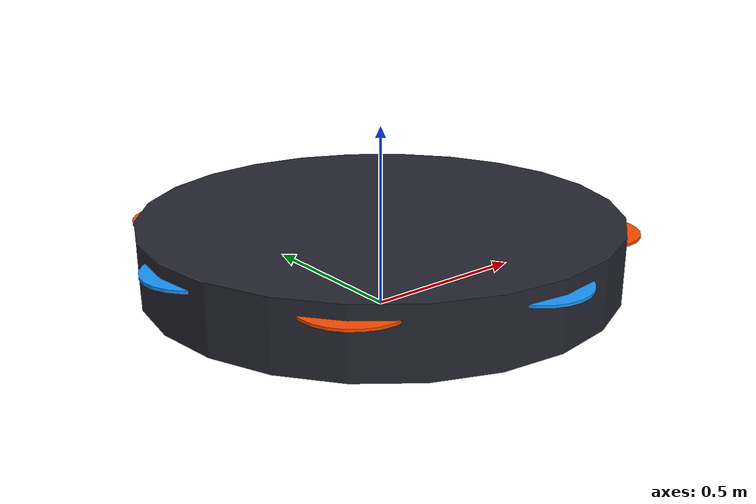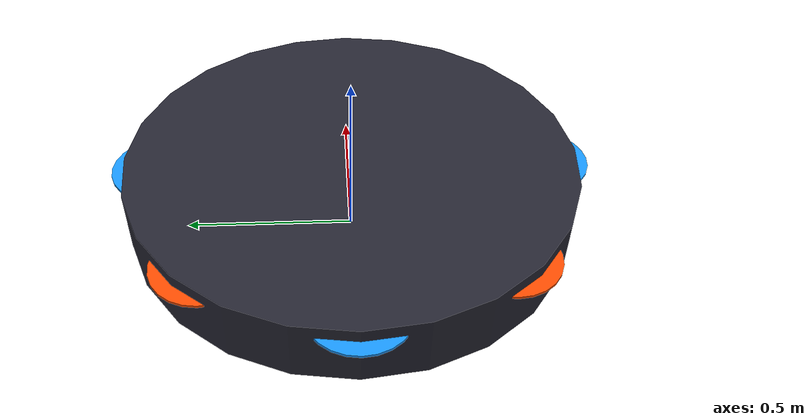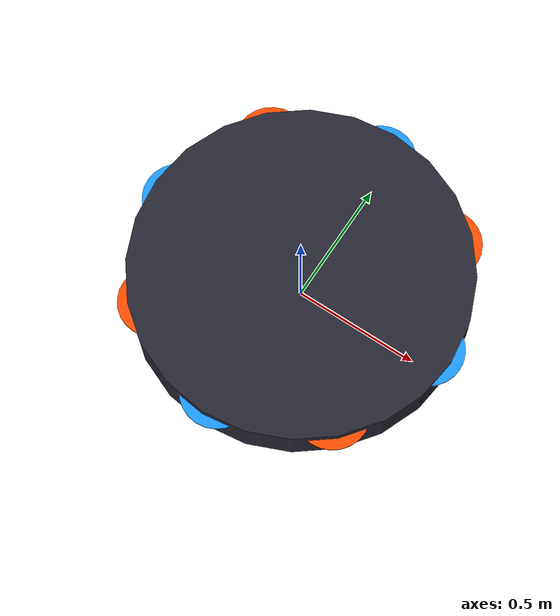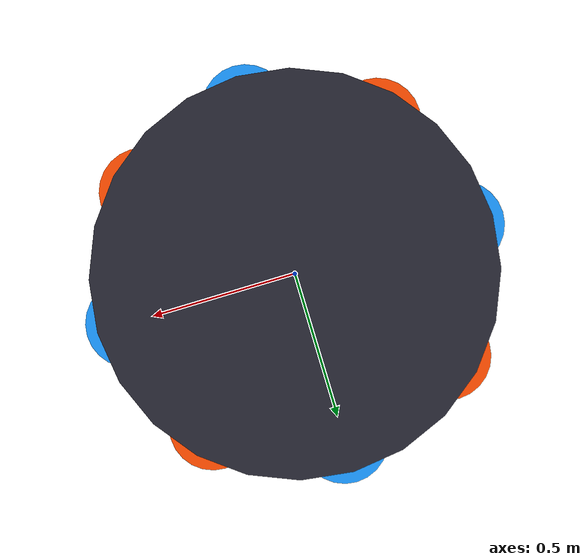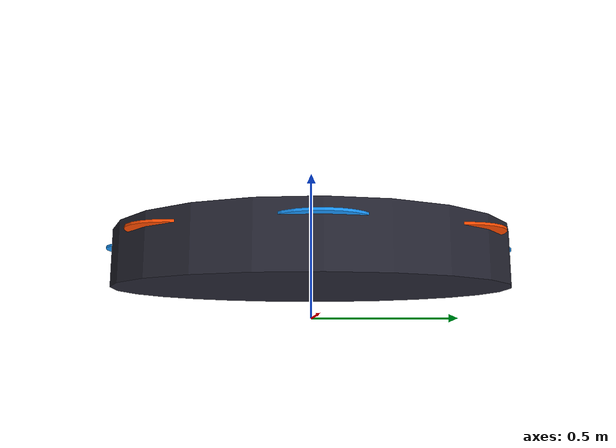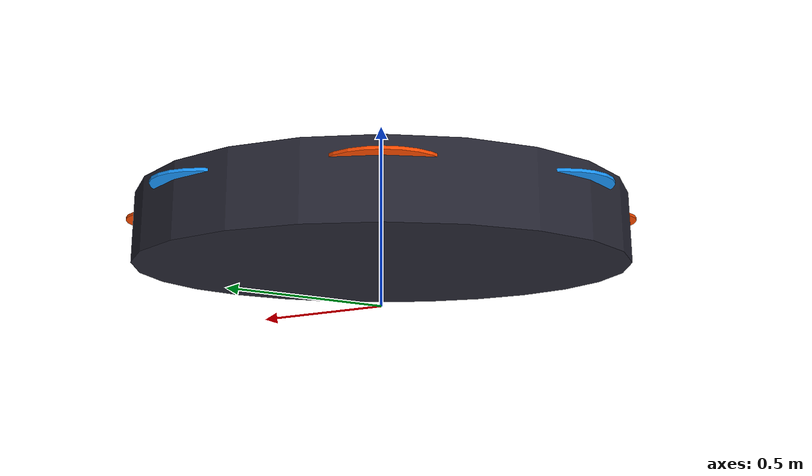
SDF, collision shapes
<?xml version="1.0" ?>
<sdf version="1.8">
  <model name="sutra_octacopter">
    <pose>0 0 0.18 0 0 0</pose>
    <static>false</static>
    <self_collide>false</self_collide>

    <!-- ── Main Octacopter Heavy Airframe Link ────────────────────────── -->
    <link name="base_link">
      <pose>0 0 0 0 0 0</pose>
      <inertial>
        <mass>3.20</mass>
        <inertia>
          <ixx>0.0750</ixx>
          <ixy>0</ixy>
          <ixz>0</ixz>
          <iyy>0.0750</iyy>
          <iyz>0</iyz>
          <izz>0.1400</izz>
        </inertia>
      </inertial>

      <collision name="base_collision">
        <geometry>
          <cylinder><radius>0.65</radius><length>0.18</length></cylinder>
        </geometry>
      </collision>

      <!-- 3D Heavy Hexa/Octa Frame Visual -->
      <visual name="octacopter_chassis">
        <geometry>
          <mesh>
            <scale>1.8 1.8 1.8</scale>
            <uri>model://x3_uav/meshes/firefly.dae</uri>
          </mesh>
        </geometry>
        <material>
          <ambient>0.1 0.1 0.12 1</ambient>
          <diffuse>0.15 0.15 0.2 1</diffuse>
        </material>
      </visual>

      <!-- Sensor Visual Pods -->
      <!-- 1. Top 360° LiDAR Puck -->
      <visual name="lidar_puck">
        <pose>0 0 0.09 0 0 0</pose>
        <geometry><cylinder><radius>0.045</radius><length>0.035</length></cylinder></geometry>
        <material><ambient>0.0 0.8 1.0 1</ambient><diffuse>0.1 0.9 1.0 1</diffuse><emissive>0.0 0.5 0.9 1</emissive></material>
      </visual>

      <!-- 2. Dual Camera Gimbal (RGB + FLIR) -->
      <visual name="gimbal_pod">
        <pose>0.18 0 -0.05 0 0.20 0</pose>
        <geometry><box><size>0.05 0.08 0.04</size></box></geometry>
        <material><ambient>0.15 0.15 0.15 1</ambient><diffuse>0.25 0.25 0.25 1</diffuse></material>
      </visual>

      <!-- 3. Dual LiPo 6S 10000mAh Battery Pack -->
      <visual name="battery_pack">
        <pose>0 0 -0.045 0 0 0</pose>
        <geometry><box><size>0.18 0.08 0.055</size></box></geometry>
        <material><ambient>0.9 0.7 0.0 1</ambient><diffuse>1.0 0.8 0.0 1</diffuse></material>
      </visual>

      <!-- 4. NavSat RTK GNSS Antenna -->
      <visual name="gps_mast">
        <pose>-0.15 -0.10 0.10 0 0 0</pose>
        <geometry><cylinder><radius>0.005</radius><length>0.12</length></cylinder></geometry>
        <material><ambient>0.1 0.1 0.1 1</ambient><diffuse>0.2 0.2 0.2 1</diffuse></material>
      </visual>
      <visual name="gps_puck">
        <pose>-0.15 -0.10 0.16 0 0 0</pose>
        <geometry><cylinder><radius>0.025</radius><length>0.012</length></cylinder></geometry>
        <material><ambient>0.9 0.9 0.9 1</ambient><diffuse>1.0 1.0 1.0 1</diffuse></material>
      </visual>

      <!-- 📡 9-DOF AVIONICS SENSOR SUITE                                  -->

      <!-- 1. IMU (250Hz Accelerometer + Gyroscope) -->
      <sensor name="imu_sensor" type="imu">
        <always_on>1</always_on>
        <update_rate>250.0</update_rate>
        <topic>imu</topic>
        <imu>
          <angular_velocity>
            <x><noise type="gaussian"><stddev>0.00015</stddev><bias_mean>0.00001</bias_mean></noise></x>
            <y><noise type="gaussian"><stddev>0.00015</stddev><bias_mean>0.00001</bias_mean></noise></y>
            <z><noise type="gaussian"><stddev>0.00015</stddev><bias_mean>0.00001</bias_mean></noise></z>
          </angular_velocity>
          <linear_acceleration>
            <x><noise type="gaussian"><stddev>0.008</stddev><bias_mean>0.001</bias_mean></noise></x>
            <y><noise type="gaussian"><stddev>0.008</stddev><bias_mean>0.001</bias_mean></noise></y>
            <z><noise type="gaussian"><stddev>0.008</stddev><bias_mean>0.001</bias_mean></noise></z>
          </linear_acceleration>
        </imu>
      </sensor>

      <!-- 2. Barometer (50Hz) -->
      <sensor name="air_pressure_sensor" type="air_pressure">
        <always_on>1</always_on>
        <update_rate>50.0</update_rate>
        <topic>air_pressure</topic>
        <air_pressure>
          <reference_altitude>0.0</reference_altitude>
          <pressure><noise type="gaussian"><mean>0.0</mean><stddev>0.01</stddev></noise></pressure>
        </air_pressure>
      </sensor>

      <!-- 3. 3-Axis Magnetometer (50Hz) -->
      <sensor name="magnetometer_sensor" type="magnetometer">
        <always_on>1</always_on>
        <update_rate>50.0</update_rate>
        <topic>magnetic_field</topic>
        <magnetometer>
          <x><noise type="gaussian"><mean>0.0</mean><stddev>0.0001</stddev></noise></x>
          <y><noise type="gaussian"><mean>0.0</mean><stddev>0.0001</stddev></noise></y>
          <z><noise type="gaussian"><mean>0.0</mean><stddev>0.0001</stddev></noise></z>
        </magnetometer>
      </sensor>

      <!-- 4. NavSat RTK GNSS (10Hz) -->
      <sensor name="navsat_sensor" type="navsat">
        <always_on>1</always_on>
        <update_rate>10.0</update_rate>
        <topic>navsat</topic>
      </sensor>

      <!-- 5. 360° 3D GPU LiDAR (10Hz 32-Channel) -->
      <sensor name="gpu_lidar" type="gpu_lidar">
        <pose>0 0 0.09 0 0 0</pose>
        <always_on>1</always_on>
        <update_rate>10.0</update_rate>
        <topic>scan/points</topic>
        <lidar>
          <scan>
            <horizontal><samples>720</samples><resolution>1</resolution><min_angle>-3.14159265</min_angle><max_angle>3.14159265</max_angle></horizontal>
            <vertical><samples>32</samples><resolution>1</resolution><min_angle>-0.436332</min_angle><max_angle>0.261799</max_angle></vertical>
          </scan>
          <range><min>0.15</min><max>60.0</max><resolution>0.01</resolution></range>
          <noise><type>gaussian</type><mean>0.0</mean><stddev>0.01</stddev></noise>
        </lidar>
      </sensor>

      <!-- 6. Downward Laser Altimeter (50Hz Rangefinder) -->
      <sensor name="altimeter_rangefinder" type="ray">
        <pose>0 0 -0.05 0 1.5707963 0</pose>
        <always_on>1</always_on>
        <update_rate>50.0</update_rate>
        <topic>rangefinder/distance</topic>
        <ray>
          <scan><horizontal><samples>1</samples><resolution>1</resolution><min_angle>0.0</min_angle><max_angle>0.0</max_angle></horizontal></scan>
          <range><min>0.05</min><max>50.0</max><resolution>0.005</resolution></range>
          <noise><type>gaussian</type><mean>0.0</mean><stddev>0.003</stddev></noise>
        </ray>
      </sensor>

      <!-- 7. Forward Optical RGB Camera (30Hz 1280x720 HD) -->
      <sensor name="camera_rgb" type="camera">
        <pose>0.18 -0.015 -0.04 0 0.20 0</pose>
        <always_on>1</always_on>
        <update_rate>30.0</update_rate>
        <topic>camera/image_raw</topic>
        <camera>
          <horizontal_fov>1.4</horizontal_fov>
          <image><width>1280</width><height>720</height><format>R8G8B8</format></image>
          <clip><near>0.1</near><far>200.0</far></clip>
        </camera>
      </sensor>

      <!-- 8. Forward FLIR LWIR Thermal Camera (30Hz 640x480) -->
      <sensor name="camera_thermal" type="thermal">
        <pose>0.18 0.015 -0.04 0 0.20 0</pose>
        <always_on>1</always_on>
        <update_rate>30.0</update_rate>
        <topic>thermal_camera/image_raw</topic>
        <camera>
          <horizontal_fov>1.05</horizontal_fov>
          <image><width>640</width><height>480</height><format>L8</format></image>
          <clip><near>0.1</near><far>150.0</far></clip>
        </camera>
      </sensor>

      <!-- 9. mmWave Radar (20Hz) -->
      <sensor name="radar_sensor" type="ray">
        <pose>0 0 -0.06 0 1.5707963 0</pose>
        <always_on>1</always_on>
        <update_rate>20.0</update_rate>
        <topic>radar/scan</topic>
        <ray>
          <scan><horizontal><samples>64</samples><resolution>1</resolution><min_angle>-0.5236</min_angle><max_angle>0.5236</max_angle></horizontal></scan>
          <range><min>0.2</min><max>45.0</max></range>
        </ray>
      </sensor>
    </link>

    <!-- ── 8x Rotor Links & Joints (Octa-X Geometry, 45° Spacing, R=0.55m) ── -->

    <!-- Rotor 0: 0° (East, CCW) -->
    <link name="rotor_0">
      <pose>0.55 0.0 0.05 0 0 0</pose>
      <inertial><mass>0.010</mass><inertia><ixx>1e-06</ixx><iyy>6e-05</iyy><izz>6e-05</izz></inertia></inertial>
      <collision name="col"><geometry><cylinder><radius>0.14</radius><length>0.007</length></cylinder></geometry></collision>
      <visual name="vis"><geometry><mesh><scale>0.14 0.14 0.14</scale><uri>model://x3_uav/meshes/propeller_ccw.dae</uri></mesh></geometry><material><ambient>0.0 0.5 1.0 1</ambient><diffuse>0.1 0.6 1.0 1</diffuse></material></visual>
    </link>
    <joint name="rotor_0_joint" type="revolute"><child>rotor_0</child><parent>base_link</parent><axis><xyz>0 0 1</xyz><limit><lower>-1e16</lower><upper>1e16</upper></limit></axis></joint>

    <!-- Rotor 1: 45° (North-East, CW) -->
    <link name="rotor_1">
      <pose>0.3889 0.3889 0.05 0 0 0</pose>
      <inertial><mass>0.010</mass><inertia><ixx>1e-06</ixx><iyy>6e-05</iyy><izz>6e-05</izz></inertia></inertial>
      <collision name="col"><geometry><cylinder><radius>0.14</radius><length>0.007</length></cylinder></geometry></collision>
      <visual name="vis"><geometry><mesh><scale>0.14 0.14 0.14</scale><uri>model://x3_uav/meshes/propeller_cw.dae</uri></mesh></geometry><material><ambient>1.0 0.2 0.0 1</ambient><diffuse>1.0 0.3 0.0 1</diffuse></material></visual>
    </link>
    <joint name="rotor_1_joint" type="revolute"><child>rotor_1</child><parent>base_link</parent><axis><xyz>0 0 1</xyz><limit><lower>-1e16</lower><upper>1e16</upper></limit></axis></joint>

    <!-- Rotor 2: 90° (North, CCW) -->
    <link name="rotor_2">
      <pose>0.0 0.55 0.05 0 0 0</pose>
      <inertial><mass>0.010</mass><inertia><ixx>1e-06</ixx><iyy>6e-05</iyy><izz>6e-05</izz></inertia></inertial>
      <collision name="col"><geometry><cylinder><radius>0.14</radius><length>0.007</length></cylinder></geometry></collision>
      <visual name="vis"><geometry><mesh><scale>0.14 0.14 0.14</scale><uri>model://x3_uav/meshes/propeller_ccw.dae</uri></mesh></geometry><material><ambient>0.0 0.5 1.0 1</ambient><diffuse>0.1 0.6 1.0 1</diffuse></material></visual>
    </link>
    <joint name="rotor_2_joint" type="revolute"><child>rotor_2</child><parent>base_link</parent><axis><xyz>0 0 1</xyz><limit><lower>-1e16</lower><upper>1e16</upper></limit></axis></joint>

    <!-- Rotor 3: 135° (North-West, CW) -->
    <link name="rotor_3">
      <pose>-0.3889 0.3889 0.05 0 0 0</pose>
      <inertial><mass>0.010</mass><inertia><ixx>1e-06</ixx><iyy>6e-05</iyy><izz>6e-05</izz></inertia></inertial>
      <collision name="col"><geometry><cylinder><radius>0.14</radius><length>0.007</length></cylinder></geometry></collision>
      <visual name="vis"><geometry><mesh><scale>0.14 0.14 0.14</scale><uri>model://x3_uav/meshes/propeller_cw.dae</uri></mesh></geometry><material><ambient>1.0 0.2 0.0 1</ambient><diffuse>1.0 0.3 0.0 1</diffuse></material></visual>
    </link>
    <joint name="rotor_3_joint" type="revolute"><child>rotor_3</child><parent>base_link</parent><axis><xyz>0 0 1</xyz><limit><lower>-1e16</lower><upper>1e16</upper></limit></axis></joint>

    <!-- Rotor 4: 180° (West, CCW) -->
    <link name="rotor_4">
      <pose>-0.55 0.0 0.05 0 0 0</pose>
      <inertial><mass>0.010</mass><inertia><ixx>1e-06</ixx><iyy>6e-05</iyy><izz>6e-05</izz></inertia></inertial>
      <collision name="col"><geometry><cylinder><radius>0.14</radius><length>0.007</length></cylinder></geometry></collision>
      <visual name="vis"><geometry><mesh><scale>0.14 0.14 0.14</scale><uri>model://x3_uav/meshes/propeller_ccw.dae</uri></mesh></geometry><material><ambient>0.0 0.5 1.0 1</ambient><diffuse>0.1 0.6 1.0 1</diffuse></material></visual>
    </link>
    <joint name="rotor_4_joint" type="revolute"><child>rotor_4</child><parent>base_link</parent><axis><xyz>0 0 1</xyz><limit><lower>-1e16</lower><upper>1e16</upper></limit></axis></joint>

    <!-- Rotor 5: 225° (South-West, CW) -->
    <link name="rotor_5">
      <pose>-0.3889 -0.3889 0.05 0 0 0</pose>
      <inertial><mass>0.010</mass><inertia><ixx>1e-06</ixx><iyy>6e-05</iyy><izz>6e-05</izz></inertia></inertial>
      <collision name="col"><geometry><cylinder><radius>0.14</radius><length>0.007</length></cylinder></geometry></collision>
      <visual name="vis"><geometry><mesh><scale>0.14 0.14 0.14</scale><uri>model://x3_uav/meshes/propeller_cw.dae</uri></mesh></geometry><material><ambient>1.0 0.2 0.0 1</ambient><diffuse>1.0 0.3 0.0 1</diffuse></material></visual>
    </link>
    <joint name="rotor_5_joint" type="revolute"><child>rotor_5</child><parent>base_link</parent><axis><xyz>0 0 1</xyz><limit><lower>-1e16</lower><upper>1e16</upper></limit></axis></joint>

    <!-- Rotor 6: 270° (South, CCW) -->
    <link name="rotor_6">
      <pose>0.0 -0.55 0.05 0 0 0</pose>
      <inertial><mass>0.010</mass><inertia><ixx>1e-06</ixx><iyy>6e-05</iyy><izz>6e-05</izz></inertia></inertial>
      <collision name="col"><geometry><cylinder><radius>0.14</radius><length>0.007</length></cylinder></geometry></collision>
      <visual name="vis"><geometry><mesh><scale>0.14 0.14 0.14</scale><uri>model://x3_uav/meshes/propeller_ccw.dae</uri></mesh></geometry><material><ambient>0.0 0.5 1.0 1</ambient><diffuse>0.1 0.6 1.0 1</diffuse></material></visual>
    </link>
    <joint name="rotor_6_joint" type="revolute"><child>rotor_6</child><parent>base_link</parent><axis><xyz>0 0 1</xyz><limit><lower>-1e16</lower><upper>1e16</upper></limit></axis></joint>

    <!-- Rotor 7: 315° (South-East, CW) -->
    <link name="rotor_7">
      <pose>0.3889 -0.3889 0.05 0 0 0</pose>
      <inertial><mass>0.010</mass><inertia><ixx>1e-06</ixx><iyy>6e-05</iyy><izz>6e-05</izz></inertia></inertial>
      <collision name="col"><geometry><cylinder><radius>0.14</radius><length>0.007</length></cylinder></geometry></collision>
      <visual name="vis"><geometry><mesh><scale>0.14 0.14 0.14</scale><uri>model://x3_uav/meshes/propeller_cw.dae</uri></mesh></geometry><material><ambient>1.0 0.2 0.0 1</ambient><diffuse>1.0 0.3 0.0 1</diffuse></material></visual>
    </link>
    <joint name="rotor_7_joint" type="revolute"><child>rotor_7</child><parent>base_link</parent><axis><xyz>0 0 1</xyz><limit><lower>-1e16</lower><upper>1e16</upper></limit></axis></joint>

    <!-- ── Actuator & Flight Control Plugins ───────────────────────────── -->
    <plugin filename="gz-sim-joint-state-publisher-system" name="gz::sim::systems::JointStatePublisher">
      <joint_name>rotor_0_joint</joint_name>
      <joint_name>rotor_1_joint</joint_name>
      <joint_name>rotor_2_joint</joint_name>
      <joint_name>rotor_3_joint</joint_name>
      <joint_name>rotor_4_joint</joint_name>
      <joint_name>rotor_5_joint</joint_name>
      <joint_name>rotor_6_joint</joint_name>
      <joint_name>rotor_7_joint</joint_name>
    </plugin>

    <plugin filename="gz-sim-velocity-control-system" name="gz::sim::systems::VelocityControl">
      <link_name>base_link</link_name>
      <topic>gazebo/command/twist</topic>
    </plugin>

    <plugin filename="gz-sim-odometry-publisher-system" name="gz::sim::systems::OdometryPublisher">
      <dimensions>3</dimensions>
    </plugin>

    <plugin filename="gz-sim-battery-system" name="gz::sim::systems::Battery">
      <battery_name>lipo6s_10000mah</battery_name>
      <voltage>22.2</voltage>
      <capacity>10.0</capacity>
      <resistance>0.001</resistance>
      <smooth_current_tau>0.98</smooth_current_tau>
      <start_on_motion>true</start_on_motion>
    </plugin>

  </model>
</sdf>
